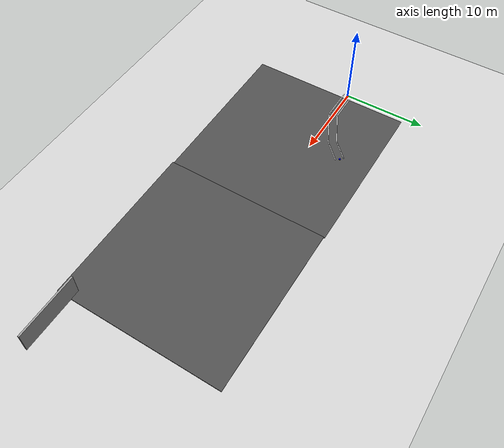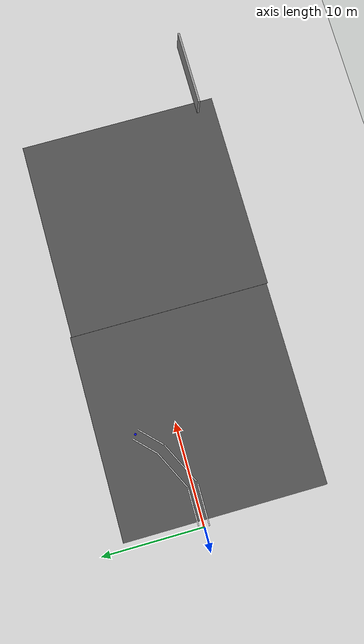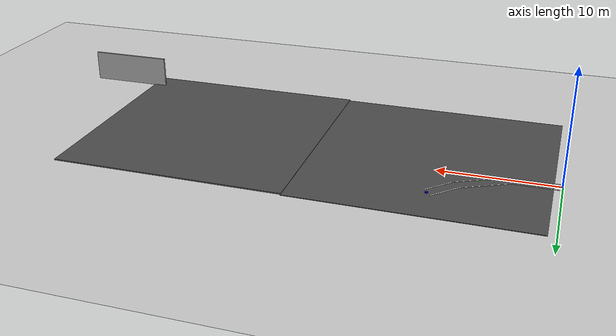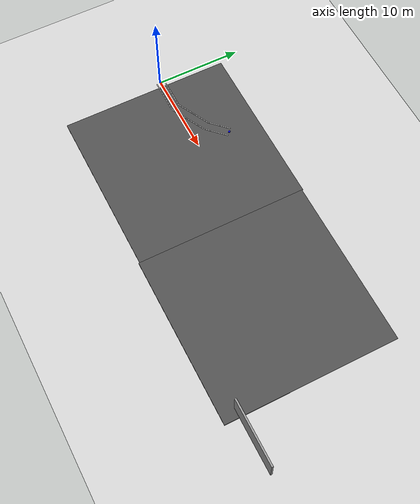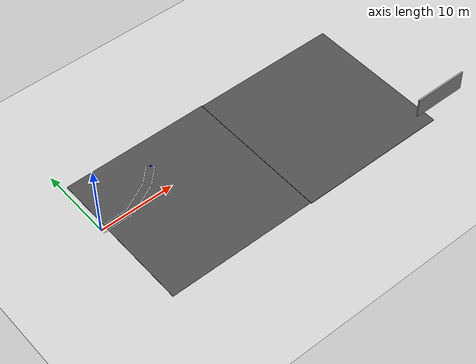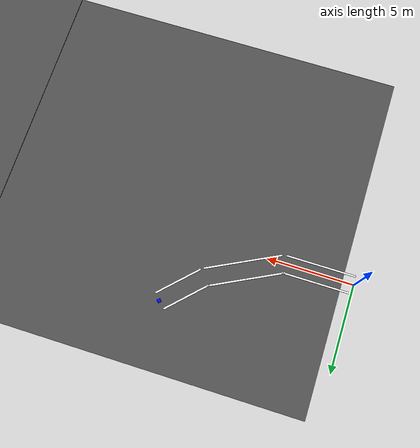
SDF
<sdf version="1.7">
 <world name="default">
  <light name="sun" type="directional">
   <pose>0 0 10 0 -0 0</pose>
   <diffuse>0.8 0.8 0.8 1</diffuse>
   <specular>0.2 0.2 0.2 1</specular>
   <attenuation>
    <range>1000</range>
    <constant>0.9</constant>
    <linear>0.01</linear>
    <quadratic>0.001</quadratic>
   </attenuation>
   <direction>-0.5 0.1 -0.9</direction>
   <spot><inner_angle>0</inner_angle><outer_angle>0</outer_angle><falloff>0</falloff></spot>
  </light>
  <model name="ground_plane">
   <static>1</static>
   <link name="link">
    <collision name="collision">
     <geometry><plane><normal>0 0 1</normal><size>100 100</size></plane></geometry>
     <surface>
      <contact><collide_bitmask>65535</collide_bitmask></contact>
      <friction><ode><mu>100</mu><mu2>50</mu2></ode></friction>
     </surface>
    </collision>
    <visual name="visual">
     <cast_shadows>0</cast_shadows>
     <geometry><plane><normal>0 0 1</normal><size>100 100</size></plane></geometry>
     <material>
      <script><uri>file://media/materials/scripts/gazebo.material</uri><name>Gazebo/Grey</name></script>
     </material>
    </visual>
   </link>
  </model>
  <gravity>0 0 -9.8</gravity>
  <magnetic_field>6e-06 2.3e-05 -4.2e-05</magnetic_field>
  <atmosphere type="adiabatic"/>
  <physics type="ode">
   <max_step_size>0.001</max_step_size>
   <real_time_factor>1</real_time_factor>
   <real_time_update_rate>1000</real_time_update_rate>
  </physics>
  <scene><ambient>0.4 0.4 0.4 1</ambient><background>0.7 0.7 0.7 1</background><shadows>1</shadows></scene>
  <spherical_coordinates>
   <surface_model>EARTH_WGS84</surface_model>
   <latitude_deg>0</latitude_deg>
   <longitude_deg>0</longitude_deg>
   <elevation>0</elevation>
   <heading_deg>0</heading_deg>
  </spherical_coordinates>
  <model name="asphalt_plane">
   <static>1</static>
   <link name="link">
    <collision name="collision"><geometry><box><size>20 20 0.1</size></box></geometry></collision>
    <visual name="visual">
     <cast_shadows>0</cast_shadows>
     <geometry><box><size>20 20 0.1</size></box></geometry>
     <material>
      <script>
       <uri>model://asphalt_plane/materials/scripts</uri>
       <uri>model://asphalt_plane/materials/textures</uri>
       <name>vrc/asphalt</name>
      </script>
     </material>
    </visual>
   </link>
   <pose>10.6554 -2.29491 -0.046677 0 -0 0</pose>
  </model>
  <model name="asphalt_plane_0">
   <static>1</static>
   <link name="link">
    <collision name="collision"><geometry><box><size>20 20 0.1</size></box></geometry></collision>
    <visual name="visual">
     <cast_shadows>0</cast_shadows>
     <geometry><box><size>20 20 0.1</size></box></geometry>
     <material>
      <script>
       <uri>model://asphalt_plane/materials/scripts</uri>
       <uri>model://asphalt_plane/materials/textures</uri>
       <name>vrc/asphalt</name>
      </script>
     </material>
    </visual>
   </link>
   <pose>30.6231 -2.42346 0 0 -0 0</pose>
  </model>
  <model name="grey_wall">
   <static>1</static>
   <link name="link">
    <pose>0 0 1.4 0 -0 0</pose>
    <collision name="collision"><geometry><box><size>7.5 0.2 2.8</size></box></geometry></collision>
    <visual name="visual">
     <cast_shadows>0</cast_shadows>
     <geometry><box><size>7.5 0.2 2.8</size></box></geometry>
     <material>
      <script>
       <uri>model://grey_wall/materials/scripts</uri>
       <uri>model://grey_wall/materials/textures</uri>
       <name>vrc/grey_wall</name>
      </script>
     </material>
    </visual>
   </link>
   <pose>43.2384 -10.6592 0 0 -0 0</pose>
  </model>
  <model name="camera_model">
   <pose>10 4 -0.008849 0 -0 0.785398</pose>
   <link name="link">
    <visual name="vis">
     <geometry><box><size>0.2 0.2 0.2</size></box></geometry>
     <material><ambient>0 0 1 1</ambient><diffuse>0 0 1 1</diffuse></material>
    </visual>
    <sensor name="dvs_cam" type="camera">
     <pose>0 0 0.1 0 -0 0</pose>
     <camera name="__default__">
      <horizontal_fov>1.047</horizontal_fov>
      <image><width>128</width><height>128</height><format>R8G8B8</format></image>
      <clip><near>0.1</near><far>100</far></clip>
     </camera>
     <visualize>0</visualize>
     <plugin name="dvs_plugin" filename="libgazebo_dvs_plugin.so">
      <cameraName>front_cam</cameraName>
      <robotNamespace>lane_demo</robotNamespace>
      <eventThreshold>10</eventThreshold>
      <cameraInfoTopicName>camera_info</cameraInfoTopicName>
     </plugin>
    </sensor>
    <inertial>
     <inertia><ixx>1</ixx><ixy>0</ixy><ixz>0</ixz><iyy>1</iyy><iyz>0</iyz><izz>1</izz></inertia>
     <mass>1</mass>
    </inertial>
   </link>
  </model>
  <model name="lane_line_left_0">
   <static>1</static>
   <link name="link">
    <pose>0 0 0.005 0 -0 0</pose>
    <visual name="visual">
     <geometry><box><size>2 0.1 0.01</size></box></geometry>
     <material><ambient>1 1 1 1</ambient><diffuse>1 1 1 1</diffuse></material>
    </visual>
    <collision name="collision"><geometry><box><size>2 0.1 0.01</size></box></geometry></collision>
   </link>
   <pose>1 0.5 0 0 -0 0</pose>
  </model>
  <model name="lane_line_right_0">
   <static>1</static>
   <link name="link">
    <pose>0 0 0.005 0 -0 0</pose>
    <visual name="visual">
     <geometry><box><size>2 0.1 0.01</size></box></geometry>
     <material><ambient>1 1 1 1</ambient><diffuse>1 1 1 1</diffuse></material>
    </visual>
    <collision name="collision"><geometry><box><size>2 0.1 0.01</size></box></geometry></collision>
   </link>
   <pose>1 -0.5 0 0 -0 0</pose>
  </model>
  <model name="lane_line_left_1">
   <static>1</static>
   <link name="link">
    <pose>0 0 0.005 0 -0 0</pose>
    <visual name="visual">
     <geometry><box><size>2 0.1 0.01</size></box></geometry>
     <material><ambient>1 1 1 1</ambient><diffuse>1 1 1 1</diffuse></material>
    </visual>
    <collision name="collision"><geometry><box><size>2 0.1 0.01</size></box></geometry></collision>
   </link>
   <pose>3 0.5 0 0 -0 0</pose>
  </model>
  <model name="lane_line_right_1">
   <static>1</static>
   <link name="link">
    <pose>0 0 0.005 0 -0 0</pose>
    <visual name="visual">
     <geometry><box><size>2 0.1 0.01</size></box></geometry>
     <material><ambient>1 1 1 1</ambient><diffuse>1 1 1 1</diffuse></material>
    </visual>
    <collision name="collision"><geometry><box><size>2 0.1 0.01</size></box></geometry></collision>
   </link>
   <pose>3 -0.5 0 0 -0 0</pose>
  </model>
  <model name="lane_line_left_2">
   <static>1</static>
   <link name="link">
    <pose>0 0 0.005 0 -0 0</pose>
    <visual name="visual">
     <geometry><box><size>2.2361 0.1 0.01</size></box></geometry>
     <material><ambient>1 1 1 1</ambient><diffuse>1 1 1 1</diffuse></material>
    </visual>
    <collision name="collision"><geometry><box><size>2.2361 0.1 0.01</size></box></geometry></collision>
   </link>
   <pose>4.77639 0.947214 0 0 -0 0.463648</pose>
  </model>
  <model name="lane_line_right_2">
   <static>1</static>
   <link name="link">
    <pose>0 0 0.005 0 -0 0</pose>
    <visual name="visual">
     <geometry><box><size>2.2361 0.1 0.01</size></box></geometry>
     <material><ambient>1 1 1 1</ambient><diffuse>1 1 1 1</diffuse></material>
    </visual>
    <collision name="collision"><geometry><box><size>2.2361 0.1 0.01</size></box></geometry></collision>
   </link>
   <pose>5.22361 0.052786 0 0 -0 0.463648</pose>
  </model>
  <model name="lane_line_left_3">
   <static>1</static>
   <link name="link">
    <pose>0 0 0.005 0 -0 0</pose>
    <visual name="visual">
     <geometry><box><size>2.2361 0.1 0.01</size></box></geometry>
     <material><ambient>1 1 1 1</ambient><diffuse>1 1 1 1</diffuse></material>
    </visual>
    <collision name="collision"><geometry><box><size>2.2361 0.1 0.01</size></box></geometry></collision>
   </link>
   <pose>6.77639 1.94721 0 0 -0 0.463648</pose>
  </model>
  <model name="lane_line_right_3">
   <static>1</static>
   <link name="link">
    <pose>0 0 0.005 0 -0 0</pose>
    <visual name="visual">
     <geometry><box><size>2.2361 0.1 0.01</size></box></geometry>
     <material><ambient>1 1 1 1</ambient><diffuse>1 1 1 1</diffuse></material>
    </visual>
    <collision name="collision"><geometry><box><size>2.2361 0.1 0.01</size></box></geometry></collision>
   </link>
   <pose>7.22361 1.05279 0 0 -0 0.463648</pose>
  </model>
  <model name="lane_line_left_4">
   <static>1</static>
   <link name="link">
    <pose>0 0 0.005 0 -0 0</pose>
    <visual name="visual">
     <geometry><box><size>2.8284 0.1 0.01</size></box></geometry>
     <material><ambient>1 1 1 1</ambient><diffuse>1 1 1 1</diffuse></material>
    </visual>
    <collision name="collision"><geometry><box><size>2.8284 0.1 0.01</size></box></geometry></collision>
   </link>
   <pose>8.64645 3.35355 0 0 -0 0.785398</pose>
  </model>
  <model name="lane_line_right_4">
   <static>1</static>
   <link name="link">
    <pose>0 0 0.005 0 -0 0</pose>
    <visual name="visual">
     <geometry><box><size>2.8284 0.1 0.01</size></box></geometry>
     <material><ambient>1 1 1 1</ambient><diffuse>1 1 1 1</diffuse></material>
    </visual>
    <collision name="collision"><geometry><box><size>2.8284 0.1 0.01</size></box></geometry></collision>
   </link>
   <pose>9.35355 2.64645 0 0 -0 0.785398</pose>
  </model>
 </world>
</sdf>
